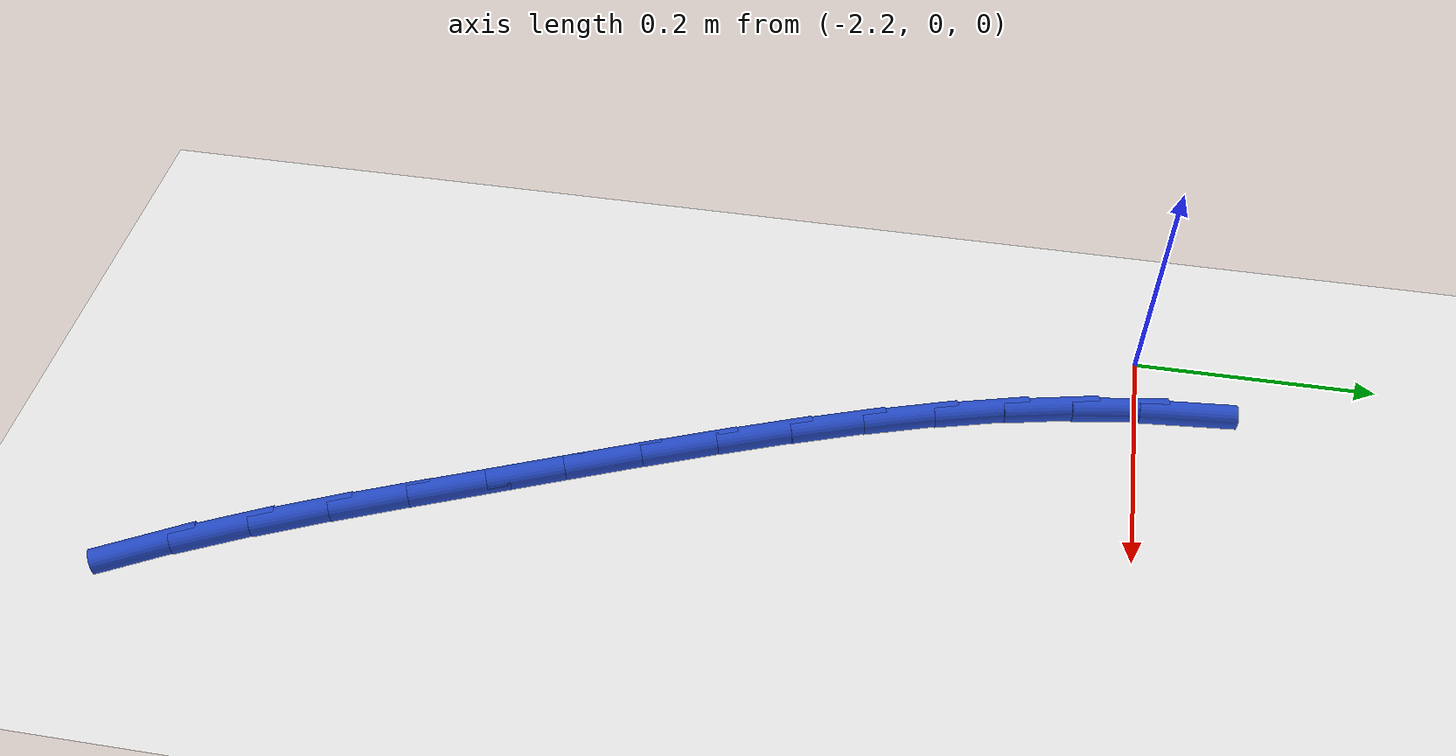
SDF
<sdf version="1.6">
 <world name="default">
  <model name="ground_plane">
   <static>1</static>
   <link name="link">
    <collision name="collision">
     <geometry><plane><normal>0 0 1</normal><size>100 100</size></plane></geometry>
     <surface><friction><ode><mu>100</mu><mu2>50</mu2></ode></friction></surface>
    </collision>
    <visual name="visual">
     <cast_shadows>0</cast_shadows>
     <geometry><plane><normal>0 0 1</normal><size>100 100</size></plane></geometry>
     <material>
      <script><uri>file://media/materials/scripts/gazebo.material</uri><name>Gazebo/WhiteGlow</name></script>
     </material>
    </visual>
   </link>
  </model>
  <model name="line">
   <link name="link_61">
    <pose>-2.1453722702287297 0.041225897812556506 0.01 0 1.57 -1.492016602044043</pose>
    <collision name="collision">
     <geometry><cylinder><radius>0.01</radius><length>0.08</length></cylinder></geometry>
    </collision>
    <visual name="visual">
     <material>
      <script><name>Gazebo/Blue</name><uri>file://media/materials/scripts/gazebo.material</uri></script>
     </material>
     <geometry><cylinder><radius>0.01</radius><length>0.08</length></cylinder></geometry>
    </visual>
   </link>
   <link name="link_62">
    <pose>-2.1410093241121757 -0.014041070384200023 0.01 0 1.57 -1.4220006569869459</pose>
    <collision name="collision">
     <geometry><cylinder><radius>0.01</radius><length>0.08</length></cylinder></geometry>
    </collision>
    <visual name="visual">
     <material>
      <script><name>Gazebo/Blue</name><uri>file://media/materials/scripts/gazebo.material</uri></script>
     </material>
     <geometry><cylinder><radius>0.01</radius><length>0.08</length></cylinder></geometry>
    </visual>
   </link>
   <link name="link_63">
    <pose>-2.132611283542323 -0.07006401072980527 0.01 0 1.57 -1.363212831111418</pose>
    <collision name="collision">
     <geometry><cylinder><radius>0.01</radius><length>0.08</length></cylinder></geometry>
    </collision>
    <visual name="visual">
     <material>
      <script><name>Gazebo/Blue</name><uri>file://media/materials/scripts/gazebo.material</uri></script>
     </material>
     <geometry><cylinder><radius>0.01</radius><length>0.08</length></cylinder></geometry>
    </visual>
   </link>
   <link name="link_64">
    <pose>-2.1206790132264732 -0.1267177687881004 0.01 0 1.57 -1.3147217182650324</pose>
    <collision name="collision">
     <geometry><cylinder><radius>0.01</radius><length>0.08</length></cylinder></geometry>
    </collision>
    <visual name="visual">
     <material>
      <script><name>Gazebo/Blue</name><uri>file://media/materials/scripts/gazebo.material</uri></script>
     </material>
     <geometry><cylinder><radius>0.01</radius><length>0.08</length></cylinder></geometry>
    </visual>
   </link>
   <link name="link_65">
    <pose>-2.1057133778719233 -0.18387719012292894 0.01 0 1.57 -1.2755784575277072</pose>
    <collision name="collision">
     <geometry><cylinder><radius>0.01</radius><length>0.08</length></cylinder></geometry>
    </collision>
    <visual name="visual">
     <material>
      <script><name>Gazebo/Blue</name><uri>file://media/materials/scripts/gazebo.material</uri></script>
     </material>
     <geometry><cylinder><radius>0.01</radius><length>0.08</length></cylinder></geometry>
    </visual>
   </link>
   <link name="link_66">
    <pose>-2.0882152421859703 -0.2414171202981344 0.01 0 1.57 -1.2449298545366878</pose>
    <collision name="collision">
     <geometry><cylinder><radius>0.01</radius><length>0.08</length></cylinder></geometry>
    </collision>
    <visual name="visual">
     <material>
      <script><name>Gazebo/Blue</name><uri>file://media/materials/scripts/gazebo.material</uri></script>
     </material>
     <geometry><cylinder><radius>0.01</radius><length>0.08</length></cylinder></geometry>
    </visual>
   </link>
   <link name="link_67">
    <pose>-2.068685470875915 -0.299212404877558 0.01 0 1.57 -1.2220751881576783</pose>
    <collision name="collision">
     <geometry><cylinder><radius>0.01</radius><length>0.08</length></cylinder></geometry>
    </collision>
    <visual name="visual">
     <material>
      <script><name>Gazebo/Blue</name><uri>file://media/materials/scripts/gazebo.material</uri></script>
     </material>
     <geometry><cylinder><radius>0.01</radius><length>0.08</length></cylinder></geometry>
    </visual>
   </link>
   <link name="link_68">
    <pose>-2.047624928649055 -0.3571378894250432 0.01 0 1.57 -1.206490672489694</pose>
    <collision name="collision">
     <geometry><cylinder><radius>0.01</radius><length>0.08</length></cylinder></geometry>
    </collision>
    <visual name="visual">
     <material>
      <script><name>Gazebo/Blue</name><uri>file://media/materials/scripts/gazebo.material</uri></script>
     </material>
     <geometry><cylinder><radius>0.01</radius><length>0.08</length></cylinder></geometry>
    </visual>
   </link>
   <link name="link_69">
    <pose>-2.0255344802126887 -0.41506841950443296 0.01 0 1.57 -1.197838295538008</pose>
    <collision name="collision">
     <geometry><cylinder><radius>0.01</radius><length>0.08</length></cylinder></geometry>
    </collision>
    <visual name="visual">
     <material>
      <script><name>Gazebo/Blue</name><uri>file://media/materials/scripts/gazebo.material</uri></script>
     </material>
     <geometry><cylinder><radius>0.01</radius><length>0.08</length></cylinder></geometry>
    </visual>
   </link>
   <link name="link_70">
    <pose>-2.0029149902741143 -0.4728788406795704 0.01 0 1.57 -1.1959628502961643</pose>
    <collision name="collision">
     <geometry><cylinder><radius>0.01</radius><length>0.08</length></cylinder></geometry>
    </collision>
    <visual name="visual">
     <material>
      <script><name>Gazebo/Blue</name><uri>file://media/materials/scripts/gazebo.material</uri></script>
     </material>
     <geometry><cylinder><radius>0.01</radius><length>0.08</length></cylinder></geometry>
    </visual>
   </link>
   <link name="link_71">
    <pose>-1.980266924041067 -0.5304438987604324 0.01 0 1.57 -1.1965007223556337</pose>
    <collision name="collision">
     <geometry><cylinder><radius>0.01</radius><length>0.08</length></cylinder></geometry>
    </collision>
    <visual name="visual">
     <material>
      <script><name>Gazebo/Blue</name><uri>file://media/materials/scripts/gazebo.material</uri></script>
     </material>
     <geometry><cylinder><radius>0.01</radius><length>0.08</length></cylinder></geometry>
    </visual>
   </link>
   <link name="link_72">
    <pose>-1.9578261425137649 -0.5875722686656141 0.01 0 1.57 -1.1873603587580988</pose>
    <collision name="collision">
     <geometry><cylinder><radius>0.01</radius><length>0.08</length></cylinder></geometry>
    </collision>
    <visual name="visual">
     <material>
      <script><name>Gazebo/Blue</name><uri>file://media/materials/scripts/gazebo.material</uri></script>
     </material>
     <geometry><cylinder><radius>0.01</radius><length>0.08</length></cylinder></geometry>
    </visual>
   </link>
   <link name="link_73">
    <pose>-1.935106494546389 -0.6438923410070982 0.01 0 1.57 -1.1660848854785426</pose>
    <collision name="collision">
     <geometry><cylinder><radius>0.01</radius><length>0.08</length></cylinder></geometry>
    </collision>
    <visual name="visual">
     <material>
      <script><name>Gazebo/Blue</name><uri>file://media/materials/scripts/gazebo.material</uri></script>
     </material>
     <geometry><cylinder><radius>0.01</radius><length>0.08</length></cylinder></geometry>
    </visual>
   </link>
   <link name="link_74">
    <pose>-1.9114998154641267 -0.6990020399779963 0.01 0 1.57 -1.1320761078816794</pose>
    <collision name="collision">
     <geometry><cylinder><radius>0.01</radius><length>0.08</length></cylinder></geometry>
    </collision>
    <visual name="visual">
     <material>
      <script><name>Gazebo/Blue</name><uri>file://media/materials/scripts/gazebo.material</uri></script>
     </material>
     <geometry><cylinder><radius>0.01</radius><length>0.08</length></cylinder></geometry>
    </visual>
   </link>
   <link name="link_75">
    <pose>-1.8863979405921676 -0.7524992897714182 0.01 0 1.57 -1.084660917819926</pose>
    <collision name="collision">
     <geometry><cylinder><radius>0.01</radius><length>0.08</length></cylinder></geometry>
    </collision>
    <visual name="visual">
     <material>
      <script><name>Gazebo/Blue</name><uri>file://media/materials/scripts/gazebo.material</uri></script>
     </material>
     <geometry><cylinder><radius>0.01</radius><length>0.08</length></cylinder></geometry>
    </visual>
   </link>
  </model>
 </world>
</sdf>
